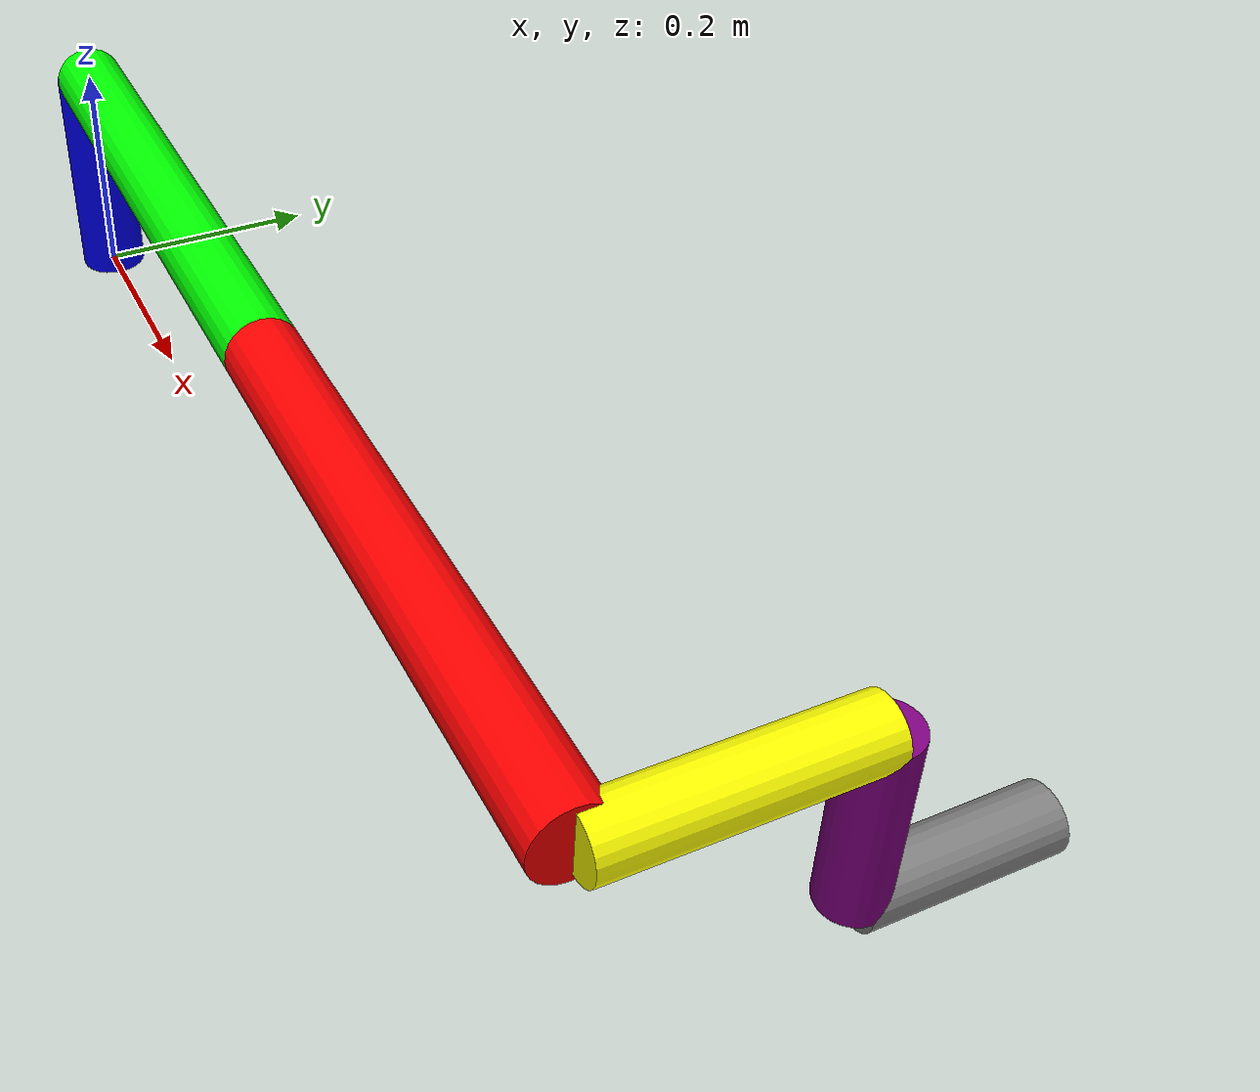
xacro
<?xml version="1.0"?>
<robot xmlns:xacro="http://ros.org/wiki/xacro" name="dummy_dh">

  <!-- Import control_xacro -->

  <!-- Generic Joint and Link Names which correspond to DH frames -->
  <!-- Arguments -->
  <xacro:arg name="prefix" default=""/>
  <!-- Reflection is done by just changing the joint range. -->
  <!-- This is a nice idea beacuse we keep the same frame conventions for the analytical solution -->
  <xacro:arg name="reflect" default="1"/>
  <xacro:arg name="plugin" default="none"/>
  <xacro:arg name="config_file" default=""/>

  <xacro:arg name="d1" default="0.2"/>
  <xacro:arg name="a2" default="-0.5"/>
  <xacro:arg name="a3" default="-0.5"/>
  <xacro:arg name="d4" default="0.2"/>
  <xacro:arg name="d5" default="0.15"/>
  <xacro:arg name="d6" default="0.15"/>

  <!-- Properties -->
  <xacro:property name="prefix" value="$(arg prefix)"/>
  <xacro:property name="plugin" value="$(arg plugin)"/>

  <!-- Conditional config file loading -->
  <xacro:property name="config_file_arg" value="$(arg config_file)"/>

  <!-- If config file is provided, load it -->
  <xacro:if value="${config_file_arg != ''}">
    <xacro:property name="cfg" value="${xacro.load_yaml(config_file_arg)}"/>
    <xacro:property name="reflect" value="${cfg['args']['reflect']}"/>
    <xacro:property name="d1" value="${cfg['args']['dh']['d1']}"/>
    <xacro:property name="a2" value="${cfg['args']['dh']['a2']}"/>
    <xacro:property name="a3" value="${cfg['args']['dh']['a3']}"/>
    <xacro:property name="d4" value="${cfg['args']['dh']['d4']}"/>
    <xacro:property name="d5" value="${cfg['args']['dh']['d5']}"/>
    <xacro:property name="d6" value="${cfg['args']['dh']['d6']}"/>
  </xacro:if>

  <!-- Otherwise use arg values (when no config file) -->
  <xacro:if value="${config_file_arg == ''}">
    <xacro:property name="reflect" value="$(arg reflect)"/>
    <xacro:property name="d1" value="$(arg d1)"/>
    <xacro:property name="a2" value="$(arg a2)"/>
    <xacro:property name="a3" value="$(arg a3)"/>
    <xacro:property name="d4" value="$(arg d4)"/>
    <xacro:property name="d5" value="$(arg d5)"/>
    <xacro:property name="d6" value="$(arg d6)"/>
  </xacro:if>

  <xacro:property name="one_if_positive_reflect" value="${(reflect+1)*0.5}"/>
  <xacro:property name="one_if_negative_reflect" value="${(reflect-1)*-0.5}"/>

  <!-- a1 and a2, are always negative and can hardcode * -1, d4 could be negative... careful -->
  <!-- vscode xacro viewer couldn't parse this -->
  <xacro:property name="d4_abs" value="${d4}"/>

  <xacro:property name="vel_limit" value="6.28"/>
  <xacro:property name="effort_limit" value="100"/>
  <xacro:property name="lower_limit" value="-3.14159"/>
  <xacro:property name="upper_limit" value="3.14159"/>

    <xacro:if value="${plugin != 'none'}">
      <xacro:include filename="$(find dummy_moveit_config)/config/dummy_dh.ros2_control.xacro" />
      <xacro:arg name="initial_positions_file" default="$(find dummy_moveit_config)/config/initial_positions.yaml" />
      <xacro:dummy_dh_ros2_control name="FakeSystem" initial_positions_file="$(arg initial_positions_file)"/>
    </xacro:if>

  <link name="base_link"/>

  <joint name="${prefix}joint_1" type="revolute">
    <parent link="base_link"/>
    <child link="${prefix}link_0"/>
    <origin xyz="0 0 0" rpy="0 0 ${pi}"/>
    <axis xyz="0 0 1"/>
    <limit lower="${lower_limit}" upper="${upper_limit}" velocity="${vel_limit}" effort="${effort_limit}"/>
  </joint>

  <link name="${prefix}link_0">
    <visual>
      <origin xyz="0 0 ${d1/2}" rpy="0 0 0"/>
      <geometry>
        <cylinder radius="0.03" length="${d1}"/>
      </geometry>
      <material name="blue"><color rgba="0 0 1 1"/></material>
    </visual>
    <collision>
      <origin xyz="0 0 ${d1/2}" rpy="0 0 0"/>
      <geometry>
        <cylinder radius="0.03" length="${d1}"/>
      </geometry>
    </collision>
  </link>

  <joint name="${prefix}joint_2" type="revolute">
    <parent link="${prefix}link_0"/>
    <child link="${prefix}link_1"/>
    <origin xyz="0 0 ${d1}" rpy="${pi/2} ${one_if_negative_reflect*pi} 0"/>
    <axis xyz="0 0 1"/>
    <limit lower="${lower_limit}" upper="${upper_limit}" velocity="${vel_limit}" effort="${effort_limit}"/>
  </joint>

  <link name="${prefix}link_1">
    <visual>
      <origin xyz="${a2/2} 0 0" rpy="0 ${pi/2} 0"/>
      <geometry>
        <cylinder radius="0.03" length="${-a2}"/>
      </geometry>
      <material name="green"><color rgba="0 1 0 1"/></material>
    </visual>
    <collision>
      <origin xyz="${a2/2} 0 0" rpy="0 ${pi/2} 0"/>
      <geometry>
        <cylinder radius="0.03" length="${-a2}"/>
      </geometry>
    </collision>
  </link>

  <joint name="${prefix}joint_3" type="revolute">
    <parent link="${prefix}link_1"/>
    <child link="${prefix}link_2"/>
    <origin xyz="${a2} 0 0" rpy="0 0 0"/>
    <axis xyz="0 0 1"/>
    <limit lower="${lower_limit}" upper="${upper_limit}" velocity="${vel_limit}" effort="${effort_limit}"/>
  </joint>

  <link name="${prefix}link_2">
    <visual>
      <origin xyz="${a3/2} 0 0" rpy="0 ${pi/2} 0"/>
      <geometry>
        <cylinder radius="0.03" length="${-a3}"/>
      </geometry>
      <material name="red"><color rgba="1 0 0 1"/></material>
    </visual>
    <collision>
      <origin xyz="${a3/2} 0 0" rpy="0 ${pi/2} 0"/>
      <geometry>
        <cylinder radius="0.03" length="${-a3}"/>
      </geometry>
    </collision>
  </link>

  <joint name="${prefix}joint_4" type="revolute">
    <parent link="${prefix}link_2"/>
    <child link="${prefix}link_3"/>
    <origin xyz="${a3} 0 0" rpy="0 0 ${one_if_negative_reflect*pi}"/>
    <axis xyz="0 0 1"/>
    <limit lower="${lower_limit}" upper="${upper_limit}" velocity="${vel_limit}" effort="${effort_limit}"/>
  </joint>

  <link name="${prefix}link_3">
    <visual>
      <origin xyz="0 0 ${d4/2}" rpy="0 0 0"/>
      <geometry>
        <cylinder radius="0.025" length="${d4_abs}"/>
      </geometry>
      <material name="yellow"><color rgba="1 1 0 1"/></material>
    </visual>
    <collision>
      <origin xyz="0 0 ${d4/2}" rpy="0 0 0"/>
      <geometry>
        <cylinder radius="0.025" length="${d4_abs}"/>
      </geometry>
    </collision>
  </link>

  <joint name="${prefix}joint_5" type="revolute">
    <parent link="${prefix}link_3"/>
    <child link="${prefix}link_4"/>
    <origin xyz="0 0 ${d4}" rpy="${pi/2} 0 0"/>
    <axis xyz="0 0 1"/>
    <limit lower="${lower_limit}" upper="${upper_limit}" velocity="${vel_limit}" effort="${effort_limit}"/>
  </joint>

  <link name="${prefix}link_4">
    <visual>
      <origin xyz="0 0 ${d5/2}" rpy="0 0 0"/>
      <geometry>
        <cylinder radius="0.025" length="${d5}"/>
      </geometry>
      <material name="purple"><color rgba="0.5 0 0.5 1"/></material>
    </visual>
    <collision>
      <origin xyz="0 0 ${d5/2}" rpy="0 0 0"/>
      <geometry>
        <cylinder radius="0.025" length="${d5}"/>
      </geometry>
    </collision>
  </link>

  <joint name="${prefix}joint_6" type="revolute">
    <parent link="${prefix}link_4"/>
    <child link="${prefix}link_5"/>
    <origin xyz="0 0 ${d5}" rpy="${-pi/2}  0 0"/>
    <axis xyz="0 0 1"/>
    <limit lower="${lower_limit}" upper="${upper_limit}" velocity="${vel_limit}" effort="${effort_limit}"/>
  </joint>

  <link name="${prefix}link_5">
    <visual>
      <origin xyz="0 0 ${d6/2}" rpy="0 0 0"/>
      <geometry>
        <cylinder radius="0.025" length="${d6}"/>
      </geometry>
      <material name="grey"><color rgba="0.5 0.5 0.5 1"/></material>
    </visual>
    <collision>
      <origin xyz="0 0 ${d6/2}" rpy="0 0 0"/>
      <geometry>
        <cylinder radius="0.025" length="${d6}"/>
      </geometry>
    </collision>
  </link>

  <joint name="${prefix}joint_7" type="fixed">
    <parent link="${prefix}link_5"/>
    <child link="${prefix}tool0"/>
    <origin xyz="0 0 ${d6}" rpy="0 0 0"/>
  </joint>

  <link name="${prefix}tool0"/>

  <joint name="${prefix}tool0_to_tool0_flip" type="fixed">
    <parent link="${prefix}tool0"/>
    <child link="${prefix}tool0_flip"/>
    <origin xyz="0 0 0" rpy="${pi} 0 0"/>
  </joint>

  <link name="${prefix}tool0_flip"/>

    <!-- https://github.com/ros-industrial/universal_robot/pull/506/files -->
  <joint name="${prefix}ee_fixed_joint" type="fixed">
    <parent link="${prefix}tool0" />
    <child link="${prefix}ee_link" />
    <origin xyz="0 0 0" rpy="0.0 ${-pi/2.0} ${pi/2.0}" />
  </joint>

  <link name="${prefix}ee_link"/>

</robot>
